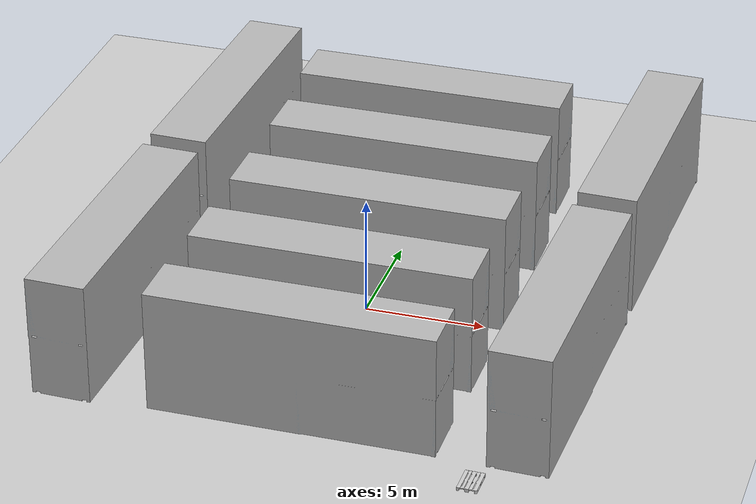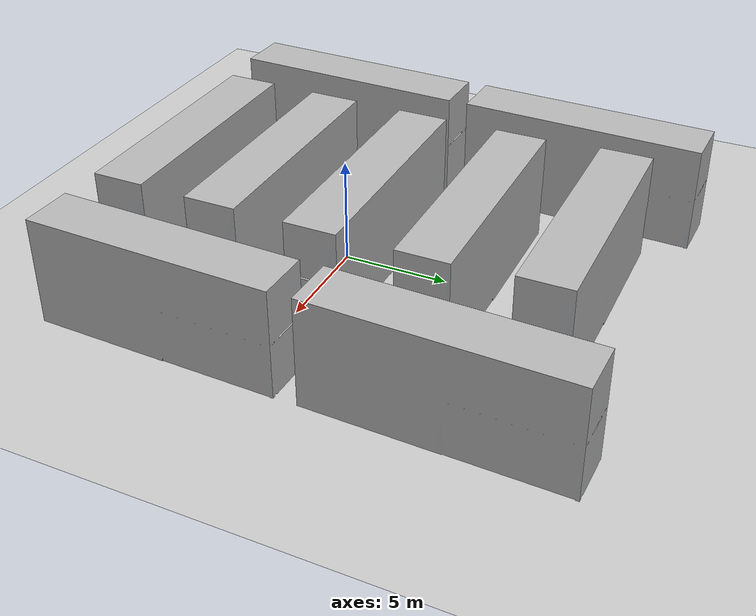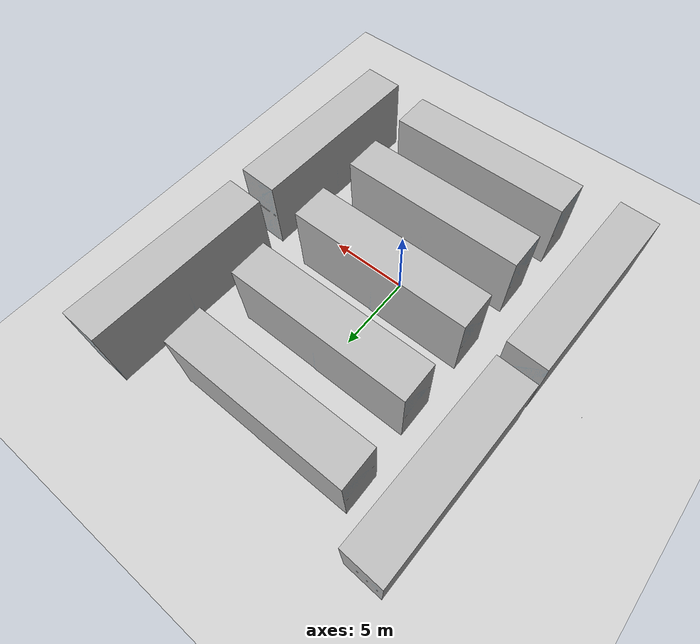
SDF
<sdf version="1.6">
 <world name="default">
  <light name="sun" type="directional">
   <pose>0 0 10 0 -0 0</pose>
   <diffuse>0.8 0.8 0.8 1</diffuse>
   <specular>0.2 0.2 0.2 1</specular>
   <attenuation>
    <range>1000</range>
    <constant>0.9</constant>
    <linear>0.01</linear>
    <quadratic>0.001</quadratic>
   </attenuation>
   <direction>-0.5 0.1 -0.9</direction>
  </light>
  <plugin name="ros_interface_plugin" filename="librotors_gazebo_ros_interface_plugin.so"/>
  <model name="ground_plane">
   <static>1</static>
   <link name="link">
    <collision name="collision">
     <geometry><plane><normal>0 0 1</normal><size>100 100</size></plane></geometry>
     <surface><friction><ode><mu>100</mu><mu2>50</mu2></ode></friction></surface>
    </collision>
    <visual name="visual">
     <cast_shadows>0</cast_shadows>
     <geometry><plane><normal>0 0 1</normal><size>100 100</size></plane></geometry>
     <material>
      <script><uri>file://media/materials/scripts/gazebo.material</uri><name>Gazebo/Grey</name></script>
     </material>
    </visual>
   </link>
  </model>
  <gravity>0 0 -9.8</gravity>
  <magnetic_field>6e-06 2.3e-05 -4.2e-05</magnetic_field>
  <atmosphere type="adiabatic"/>
  <physics type="ode">
   <gravity>0 0 -9.81</gravity>
   <ode>
    <solver><type>quick</type><iters>10</iters><sor>1.3</sor></solver>
    <constraints>
     <cfm>0.0</cfm>
     <erp>0.2</erp>
     <contact_max_correcting_vel>10</contact_max_correcting_vel>
     <contact_surface_layer>0.001</contact_surface_layer>
    </constraints>
   </ode>
   <real_time_update_rate>1000</real_time_update_rate>
   <max_step_size>0.001</max_step_size>
  </physics>
  <scene><ambient>0.4 0.4 0.4 1</ambient><background>0.7 0.7 0.7 1</background><shadows>1</shadows></scene>
  <audio><device>default</device></audio>
  <spherical_coordinates>
   <surface_model>EARTH_WGS84</surface_model>
   <latitude_deg>0</latitude_deg>
   <longitude_deg>0</longitude_deg>
   <elevation>0</elevation>
   <heading_deg>0</heading_deg>
  </spherical_coordinates>
  <model name="container-triple-stack">
   <static>1</static>
   <link name="chassis">
    <collision name="collision">
     <geometry><mesh><uri>model://container-triple-stack/model.dae</uri></mesh></geometry>
    </collision>
    <visual name="visual">
     <geometry><mesh><uri>model://container-triple-stack/model.dae</uri></mesh></geometry>
    </visual>
   </link>
   <pose>60.0981 -9.66821 0 0 -0 0</pose>
  </model>
  <model name="container-triple-stack_0">
   <static>1</static>
   <link name="chassis">
    <collision name="collision">
     <geometry><mesh><uri>model://container-triple-stack/model.dae</uri></mesh></geometry>
    </collision>
    <visual name="visual">
     <geometry><mesh><uri>model://container-triple-stack/model.dae</uri></mesh></geometry>
    </visual>
   </link>
   <pose>60.1889 -4.92363 0 0 -0 0</pose>
  </model>
  <model name="container-triple-stack_0_clone">
   <static>1</static>
   <link name="chassis">
    <collision name="collision">
     <geometry><mesh><uri>model://container-triple-stack/model.dae</uri></mesh></geometry>
    </collision>
    <visual name="visual">
     <geometry><mesh><uri>model://container-triple-stack/model.dae</uri></mesh></geometry>
    </visual>
   </link>
   <pose>12.2901 56.3624 0 0 -0 1.54</pose>
  </model>
  <model name="container-triple-stack_0_clone_clone">
   <static>1</static>
   <link name="chassis">
    <collision name="collision">
     <geometry><mesh><uri>model://container-triple-stack/model.dae</uri></mesh></geometry>
    </collision>
    <visual name="visual">
     <geometry><mesh><uri>model://container-triple-stack/model.dae</uri></mesh></geometry>
    </visual>
   </link>
   <pose>12.6188 69.0787 0 0 -0 1.54</pose>
  </model>
  <model name="container-triple-stack_0_clone_clone_clone">
   <static>1</static>
   <link name="chassis">
    <collision name="collision">
     <geometry><mesh><uri>model://container-triple-stack/model.dae</uri></mesh></geometry>
    </collision>
    <visual name="visual">
     <geometry><mesh><uri>model://container-triple-stack/model.dae</uri></mesh></geometry>
    </visual>
   </link>
   <pose>-6.10185 56.1982 0 0 -0 1.54</pose>
  </model>
  <model name="container-triple-stack_0_clone_clone_clone_0">
   <static>1</static>
   <link name="chassis">
    <collision name="collision">
     <geometry><mesh><uri>model://container-triple-stack/model.dae</uri></mesh></geometry>
    </collision>
    <visual name="visual">
     <geometry><mesh><uri>model://container-triple-stack/model.dae</uri></mesh></geometry>
    </visual>
   </link>
   <pose>-5.75252 68.7942 0 0 -0 1.54</pose>
  </model>
  <model name="container-triple-stack_0_clone_0">
   <static>1</static>
   <link name="chassis">
    <collision name="collision">
     <geometry><mesh><uri>model://container-triple-stack/model.dae</uri></mesh></geometry>
    </collision>
    <visual name="visual">
     <geometry><mesh><uri>model://container-triple-stack/model.dae</uri></mesh></geometry>
    </visual>
   </link>
   <pose>60.2202 -0.08199 0 0 -0 0</pose>
  </model>
  <model name="container-triple-stack_0_clone_0_clone">
   <static>1</static>
   <link name="chassis">
    <collision name="collision">
     <geometry><mesh><uri>model://container-triple-stack/model.dae</uri></mesh></geometry>
    </collision>
    <visual name="visual">
     <geometry><mesh><uri>model://container-triple-stack/model.dae</uri></mesh></geometry>
    </visual>
   </link>
   <pose>60.2277 4.95859 0 0 -0 0</pose>
  </model>
  <model name="container-triple-stack_0_clone_0_clone_clone">
   <static>1</static>
   <link name="chassis">
    <collision name="collision">
     <geometry><mesh><uri>model://container-triple-stack/model.dae</uri></mesh></geometry>
    </collision>
    <visual name="visual">
     <geometry><mesh><uri>model://container-triple-stack/model.dae</uri></mesh></geometry>
    </visual>
   </link>
   <pose>59.9378 9.95645 0 0 -0 0</pose>
  </model>
  <model name="intel_realsense_r200">
   <pose>-13.0716 0.465905 0.009998 -0 1e-06 2.1e-05</pose>
   <link name="link">
    <inertial>
     <mass>0.2</mass>
     <inertia>
      <ixx>0.00014395</ixx>
      <ixy>0</ixy>
      <ixz>0</ixz>
      <iyy>3.84e-06</iyy>
      <iyz>0</iyz>
      <izz>0.00014136</izz>
     </inertia>
    </inertial>
    <collision name="collision">
     <geometry><box><size>0.008 0.13 0.02</size></box></geometry>
     <surface>
      <contact><ode><max_vel>0.1</max_vel><min_depth>0.001</min_depth></ode></contact>
      <friction><ode><mu>0.4</mu><mu2>0.4</mu2></ode></friction>
     </surface>
    </collision>
    <visual name="visual">
     <geometry><mesh><uri>model://intel_realsense_r200/meshes/realsense_r200.dae</uri></mesh></geometry>
    </visual>
    <sensor name="camera" type="depth">
     <pose>0.001 -0.045 0.003 0 -0 0</pose>
     <update_rate>60</update_rate>
     <camera name="__default__">
      <horizontal_fov>0.976899</horizontal_fov>
      <image><width>480</width><height>360</height><format>R8G8B8</format></image>
      <clip><near>0.5</near><far>10</far></clip>
     </camera>
    </sensor>
   </link>
  </model>
  <model name="euro_pallet">
   <link name="link">
    <inertial>
     <mass>20</mass>
     <inertia><ixx>2.43</ixx><ixy>0</ixy><ixz>0</ixz><iyy>1.1</iyy><iyz>0</iyz><izz>3.47</izz></inertia>
    </inertial>
    <collision name="collision">
     <pose>0 0 0.05 0 -0 0</pose>
     <geometry><mesh><uri>model://euro_pallet/meshes/pallet.dae</uri><scale>0.1 0.1 0.1</scale></mesh></geometry>
    </collision>
    <visual name="visual">
     <pose>0 0 0.05 0 -0 0</pose>
     <geometry><mesh><uri>model://euro_pallet/meshes/pallet.dae</uri><scale>0.1 0.1 0.1</scale></mesh></geometry>
    </visual>
   </link>
   <pose>7.44644 -10.8534 0.072 0 0 -0.013016</pose>
  </model>
 </world>
</sdf>
